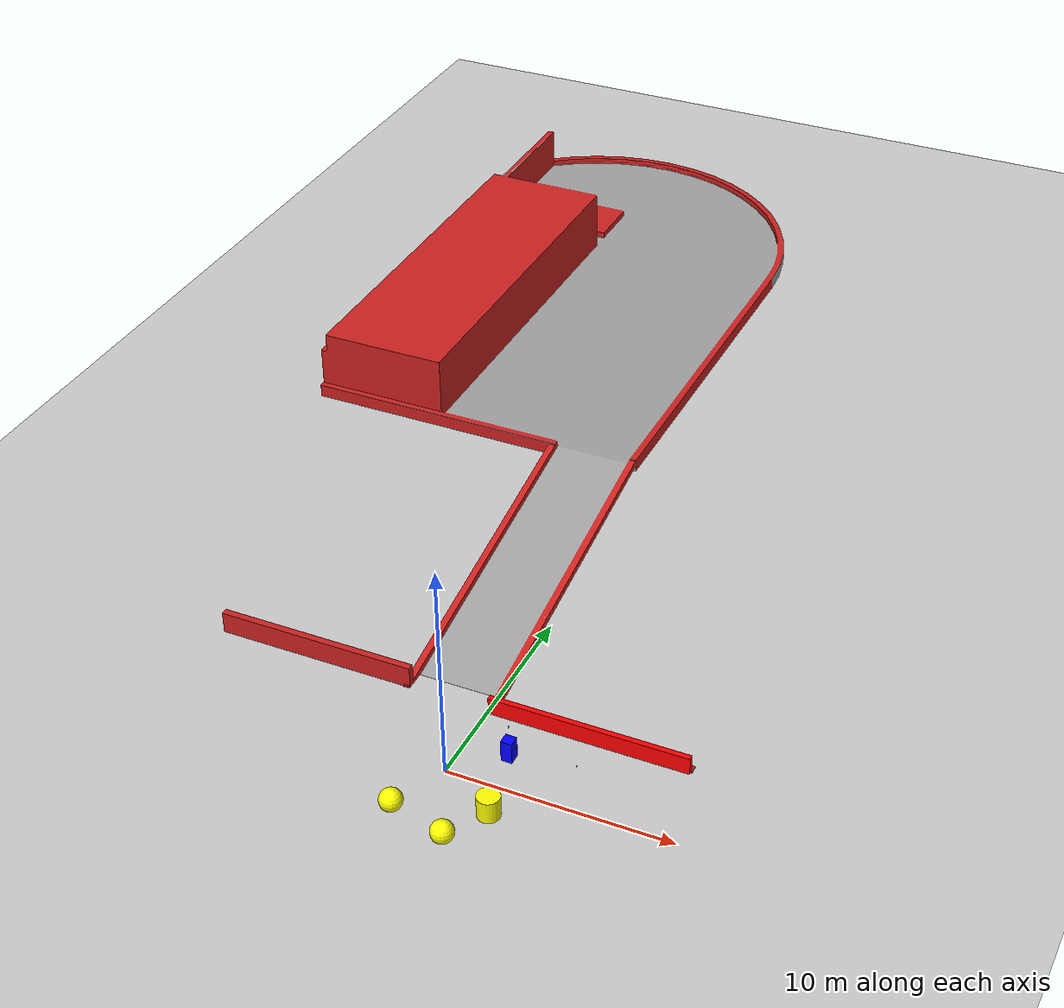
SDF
<sdf version="1.8">
 <world name="driveway">
  <physics name="1ms" type="ignored">
   <max_step_size>0.01</max_step_size>
   <real_time_factor>1</real_time_factor>
   <real_time_update_rate>1000</real_time_update_rate>
  </physics>
  <plugin filename="gz-sim-physics-system" name="gz::sim::systems::Physics"/>
  <plugin filename="gz-sim-user-commands-system" name="gz::sim::systems::UserCommands"/>
  <plugin filename="gz-sim-scene-broadcaster-system" name="gz::sim::systems::SceneBroadcaster"/>
  <plugin filename="gz-sim-imu-system" name="gz::sim::systems::Imu"/>
  <plugin filename="gz-sim-sensors-system" name="gz::sim::systems::Sensors">
   <render_engine>ogre2</render_engine>
  </plugin>
  <gravity>0 0 -9.8000000000000007</gravity>
  <magnetic_field>5.5644999999999998e-06 2.2875799999999999e-05 -4.2388400000000002e-05</magnetic_field>
  <atmosphere type="adiabatic"/>
  <scene>
   <ambient>0.9 0.9 0.9 1</ambient>
   <background>0.699999988 0.699999988 0.699999988 1</background>
   <shadows>false</shadows>
  </scene>
  <model name="ground_plane">
   <static>true</static>
   <link name="link">
    <collision name="collision">
     <geometry><plane><normal>0 0 1</normal><size>100 100</size></plane></geometry>
     <surface><friction><ode><mu>0.8</mu><mu2>0.8</mu2></ode></friction></surface>
    </collision>
    <visual name="visual">
     <geometry><plane><normal>0 0 1</normal><size>100 100</size></plane></geometry>
     <material>
      <ambient>0.800000012 0.800000012 0.800000012 1</ambient>
      <diffuse>0.800000012 0.800000012 0.800000012 1</diffuse>
      <specular>0.800000012 0.800000012 0.800000012 1</specular>
     </material>
    </visual>
    <inertial>
     <mass>1</mass>
     <inertia><ixx>1</ixx><ixy>0</ixy><ixz>0</ixz><iyy>1</iyy><iyz>0</iyz><izz>1</izz></inertia>
    </inertial>
   </link>
  </model>
  <model name="cylinder">
   <pose>2.6996803647074355 -1.5120214653368446 0.53332607497845363 0.0027131386142535429 0.00015417512395317888 6.300732504563015e-06</pose>
   <link name="cylinder_link">
    <inertial>
     <inertia>
      <ixx>0.14580000000000001</ixx>
      <ixy>0</ixy>
      <ixz>0</ixz>
      <iyy>0.14580000000000001</iyy>
      <iyz>0</iyz>
      <izz>0.125</izz>
     </inertia>
     <mass>1</mass>
    </inertial>
    <collision name="cylinder_collision">
     <geometry><cylinder><radius>0.5</radius><length>1</length></cylinder></geometry>
    </collision>
    <visual name="cylinder_visual">
     <geometry><cylinder><radius>0.5</radius><length>1</length></cylinder></geometry>
     <material><ambient>1 1 0 1</ambient><diffuse>1 1 0 1</diffuse><specular>1 1 1 1</specular></material>
    </visual>
   </link>
   <static>false</static>
  </model>
  <model name="sphere">
   <pose>-0.9581936727758221 -2.7498126592616607 0.499999990200098 0 0 0</pose>
   <link name="sphere_link">
    <inertial>
     <inertia>
      <ixx>0.10000000000000001</ixx>
      <ixy>0</ixy>
      <ixz>0</ixz>
      <iyy>0.10000000000000001</iyy>
      <iyz>0</iyz>
      <izz>0.10000000000000001</izz>
     </inertia>
     <mass>1</mass>
    </inertial>
    <collision name="sphere_collision"><geometry><sphere><radius>0.5</radius></sphere></geometry></collision>
    <visual name="sphere_visual">
     <geometry><sphere><radius>0.5</radius></sphere></geometry>
     <material><ambient>1 1 0 1</ambient><diffuse>1 1 0 1</diffuse><specular>1 1 1 1</specular></material>
    </visual>
   </link>
   <static>false</static>
  </model>
  <model name="sphere_0">
   <pose>1.688429648377158 -3.4908630058379987 0.499999990200098 0 0 0</pose>
   <link name="sphere_link">
    <inertial>
     <inertia>
      <ixx>0.10000000000000001</ixx>
      <ixy>0</ixy>
      <ixz>0</ixz>
      <iyy>0.10000000000000001</iyy>
      <iyz>0</iyz>
      <izz>0.10000000000000001</izz>
     </inertia>
     <mass>1</mass>
    </inertial>
    <collision name="sphere_collision"><geometry><sphere><radius>0.5</radius></sphere></geometry></collision>
    <visual name="sphere_visual">
     <geometry><sphere><radius>0.5</radius></sphere></geometry>
     <material><ambient>1 1 0 1</ambient><diffuse>1 1 0 1</diffuse><specular>1 1 1 1</specular></material>
    </visual>
   </link>
   <static>false</static>
  </model>
  <model name="Driveway">
   <link name="link">
    <visual name="visual">
     <geometry><mesh><uri>file:///home/indie/garbo_ws/src/garbo/world/meshes/Driveway.dae</uri></mesh></geometry>
    </visual>
    <collision name="collision">
     <geometry><mesh><uri>file:///home/indie/garbo_ws/src/garbo/world/meshes/Driveway.dae</uri></mesh></geometry>
     <surface><friction><ode><mu>0.8</mu><mu2>0.8</mu2></ode></friction></surface>
    </collision>
    <inertial>
     <mass>1</mass>
     <inertia><ixx>1</ixx><ixy>0</ixy><ixz>0</ixz><iyy>1</iyy><iyz>0</iyz><izz>1</izz></inertia>
    </inertial>
   </link>
   <pose>-3.7301655356565218 -2.0966974982482873 -0.271565125995621 0.0027146031228186757 0.0001486533794703613 6.7007967251794856e-06</pose>
   <static>true</static>
  </model>
  <model name="wall">
   <pose>4.5 4 0 0 0 0</pose>
   <link name="box_link">
    <inertial>
     <inertia><ixx>0.16666</ixx><ixy>0</ixy><ixz>0</ixz><iyy>0.16666</iyy><iyz>0</iyz><izz>0.16666</izz></inertia>
     <mass>1</mass>
    </inertial>
    <collision name="box_collision"><geometry><box><size>9 0.25 1.5</size></box></geometry></collision>
    <visual name="box_visual">
     <geometry><box><size>9 0.25 1.5</size></box></geometry>
     <material><ambient>1 0 0 1</ambient><diffuse>1 0 0 1</diffuse></material>
    </visual>
   </link>
   <static>true</static>
  </model>
  <model name="recycle_bin">
   <pose>2 1.75 0.5 0 0 0</pose>
   <link name="box_link">
    <inertial>
     <inertia><ixx>0.16666</ixx><ixy>0</ixy><ixz>0</ixz><iyy>0.16666</iyy><iyz>0</iyz><izz>0.16666</izz></inertia>
     <mass>5</mass>
    </inertial>
    <collision name="box_collision"><geometry><box><size>0.5 0.5 1</size></box></geometry></collision>
    <visual name="box_visual">
     <geometry><box><size>0.5 0.5 1</size></box></geometry>
     <material><ambient>0 0 1 1</ambient><diffuse>0 0 1 1</diffuse></material>
    </visual>
   </link>
   <static>false</static>
   <include>
    <name>recycle_bin_tag</name>
    <pose>0.25 0 0.145 1.5708 0 1.5708</pose>
    <static>true</static>
    <uri>model://Apriltag36_11_00003</uri>
   </include>
  </model>
  <light name="sun" type="directional">
   <pose>0 0 20 0 0 0</pose>
   <cast_shadows>false</cast_shadows>
   <intensity>0.75</intensity>
   <direction>-0.5 0.10000000000000001 -0.90000000000000002</direction>
   <diffuse>0.800000012 0.800000012 0.800000012 1</diffuse>
   <specular>0.200000003 0.200000003 0.200000003 1</specular>
   <attenuation>
    <range>1000</range>
    <linear>0.01</linear>
    <constant>0.90000000000000002</constant>
    <quadratic>0.001</quadratic>
   </attenuation>
   <spot><inner_angle>0</inner_angle><outer_angle>0</outer_angle><falloff>0</falloff></spot>
  </light>
  <include>
   <name>trash_return_dock</name>
   <pose>1.5 2.75 0.66 1.5707963268 0 1.5707963268</pose>
   <static>true</static>
   <uri>model://Apriltag36_11_00004</uri>
  </include>
  <include>
   <name>recycle_return_dock</name>
   <pose>5.0 1.75 0.66 1.5707963268 0 -1.5707963268</pose>
   <static>true</static>
   <uri>model://Apriltag36_11_00005</uri>
  </include>
 </world>
</sdf>

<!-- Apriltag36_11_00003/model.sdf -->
<sdf version='1.6'>
  <model name='Apriltag36_11_00003'>
    <link name="link">
      <inertial>
        <pose>0 0 0 0 0 0</pose>
        <mass>0.5</mass>
        <inertia>
          <ixx>0.0001</ixx>
          <ixy>0</ixy>
          <ixz>0</ixz>
          <iyy>0.0001</iyy>
          <iyz>0</iyz>
          <izz>0.0001</izz>
        </inertia>
      </inertial>
      <collision name="collision">
        <pose>0 0 0 0 0 0</pose>
        <geometry>
          <mesh>
            <uri>model://world/models/Apriltag36_11_00003/meshes/tag36_11_00003.dae</uri>
          </mesh>
        </geometry>
        <surface>
          <friction>
            <ode>
              <mu>1.0</mu>
              <mu2>1.0</mu2>
            </ode>
          </friction>
          <contact>
            <ode>
              <kp>10000000.0</kp>
              <kd>1.0</kd>
              <min_depth>0.001</min_depth>
              <max_vel>0.1</max_vel>
            </ode>
          </contact>
        </surface>
      </collision>
      <visual name="visual">
        <pose>0 0 0 0 0 0</pose>
        <geometry>
          <mesh>
            <uri>model://world/models/Apriltag36_11_00003/meshes/tag36_11_00003.dae</uri>
          </mesh>
        </geometry>
      </visual>
    </link>
  </model>
</sdf>

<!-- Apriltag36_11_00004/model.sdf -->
<sdf version='1.6'>
  <model name='Apriltag36_11_00004'>
    <link name="link">
      <inertial>
        <pose>0 0 0 0 0 0</pose>
        <mass>0.5</mass>
        <inertia>
          <ixx>0.0001</ixx>
          <ixy>0</ixy>
          <ixz>0</ixz>
          <iyy>0.0001</iyy>
          <iyz>0</iyz>
          <izz>0.0001</izz>
        </inertia>
      </inertial>
      <collision name="collision">
        <pose>0 0 0 0 0 0</pose>
        <geometry>
          <mesh>
            <uri>model://world/models/Apriltag36_11_00004/meshes/tag36_11_00004.dae</uri>
          </mesh>
        </geometry>
        <surface>
          <friction>
            <ode>
              <mu>1.0</mu>
              <mu2>1.0</mu2>
            </ode>
          </friction>
          <contact>
            <ode>
              <kp>10000000.0</kp>
              <kd>1.0</kd>
              <min_depth>0.001</min_depth>
              <max_vel>0.1</max_vel>
            </ode>
          </contact>
        </surface>
      </collision>
      <visual name="visual">
        <pose>0 0 0 0 0 0</pose>
        <geometry>
          <mesh>
            <uri>model://world/models/Apriltag36_11_00004/meshes/tag36_11_00004.dae</uri>
          </mesh>
        </geometry>
      </visual>
    </link>
  </model>
</sdf>

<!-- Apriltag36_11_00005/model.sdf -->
<sdf version='1.6'>
  <model name='Apriltag36_11_00005'>
    <link name="link">
      <inertial>
        <pose>0 0 0 0 0 0</pose>
        <mass>0.5</mass>
        <inertia>
          <ixx>0.0001</ixx>
          <ixy>0</ixy>
          <ixz>0</ixz>
          <iyy>0.0001</iyy>
          <iyz>0</iyz>
          <izz>0.0001</izz>
        </inertia>
      </inertial>
      <collision name="collision">
        <pose>0 0 0 0 0 0</pose>
        <geometry>
          <mesh>
            <uri>model://Apriltag36_11_00005/meshes/tag36_11_00005.dae</uri>
          </mesh>
        </geometry>
        <surface>
          <friction>
            <ode>
              <mu>1.0</mu>
              <mu2>1.0</mu2>
            </ode>
          </friction>
          <contact>
            <ode>
              <kp>10000000.0</kp>
              <kd>1.0</kd>
              <min_depth>0.001</min_depth>
              <max_vel>0.1</max_vel>
            </ode>
          </contact>
        </surface>
      </collision>
      <visual name="visual">
        <pose>0 0 0 0 0 0</pose>
        <geometry>
          <mesh>
            <uri>model://Apriltag36_11_00005/meshes/tag36_11_00005.dae</uri>
          </mesh>
        </geometry>
      </visual>
    </link>
  </model>
</sdf>
